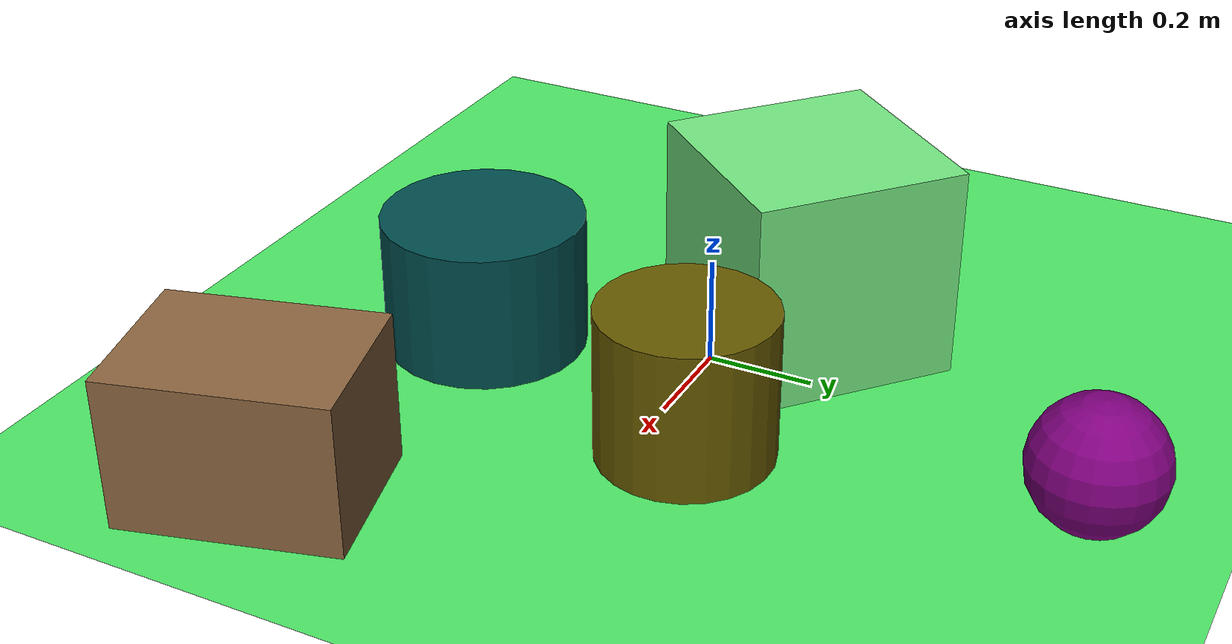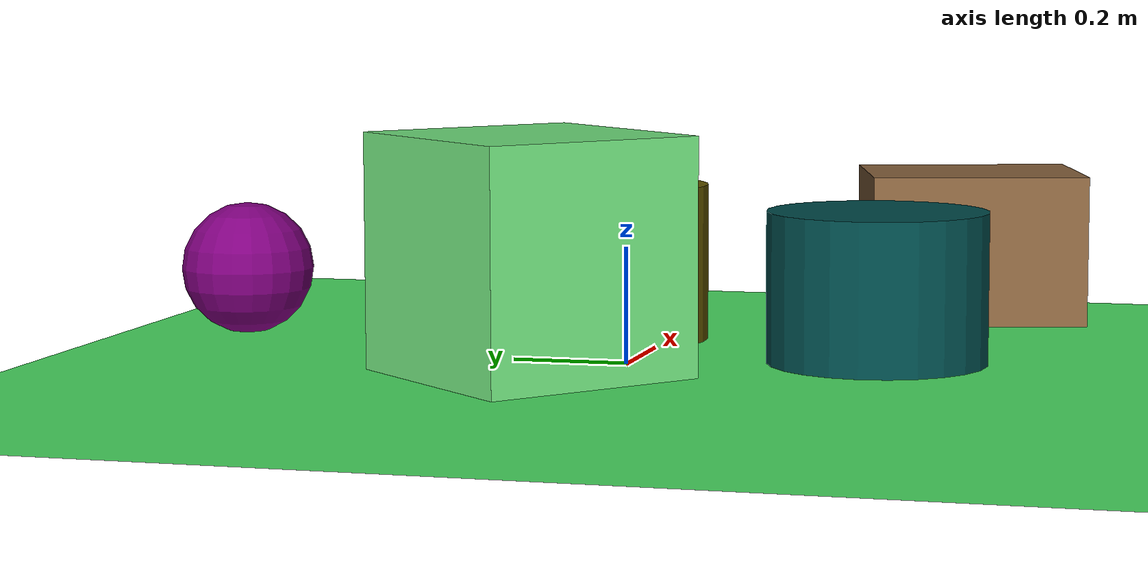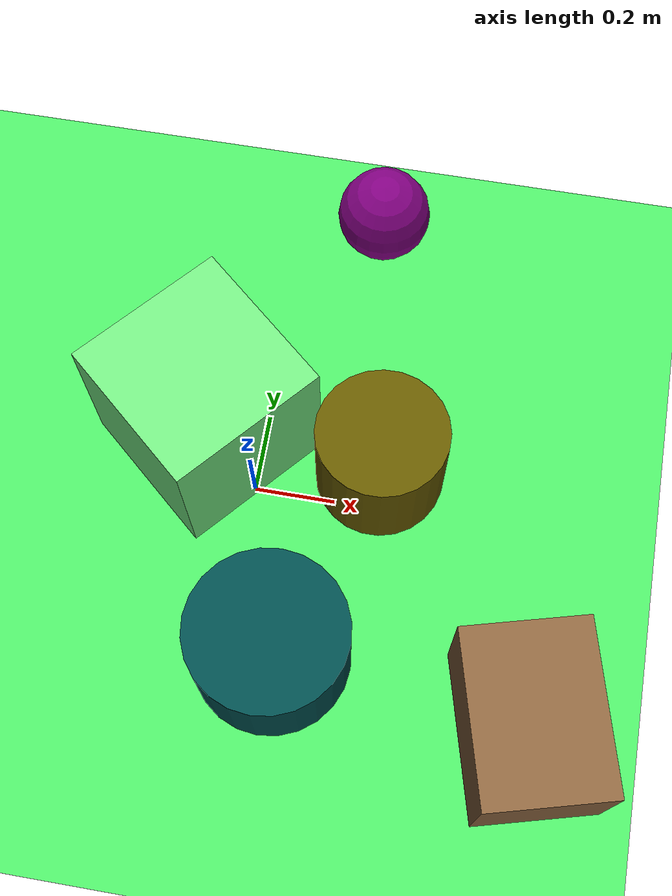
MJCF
<mujoco>
   <asset>
<texture type="skybox" builtin="gradient" rgb1="0.1 0.1 0.5" rgb2="0.9 0.3 0.3" width="500" height="500"/>
<texture name="checker_0" builtin="checker" rgb1="0.9 0.1 0.4" rgb2="0.2 0.7 0.1" width="500" height="500"/>
<texture name="checker_1" builtin="checker" rgb1="0.0 0.4 0.0" rgb2="0.8 0.3 0.0" width="500" height="500"/>
<texture name="checker_2" builtin="checker" rgb1="0.3 0.8 0.0" rgb2="0.6 1.0 1.0" width="500" height="500"/>
<texture name="flat_3" builtin="flat" rgb1="0.5 0.0 0.5" rgb2="0.5 0.0 0.5"  width="500" height="500"/>
<texture name="checker_4" builtin="checker" rgb1="0.0 0.5 0.5" rgb2="0.0 0.1 0.1" width="500" height="500"/><material name="checker_0_mat" reflectance="0.9912372049164416" texrepeat="6 6" texture="checker_0" texuniform="false" />
<material name="checker_1_mat" reflectance="0.9598939198878061" texrepeat="8 8" texture="checker_1" texuniform="false" />
<material name="checker_2_mat" reflectance="0.8935165327081886" texrepeat="2 2" texture="checker_2" texuniform="false" />
<material name="flat_3_mat" reflectance="0.8084632009737573" texture="flat_3" texuniform="true"/>
<material name="checker_4_mat" reflectance="0.3340387075133944" texrepeat="9 9" texture="checker_4" texuniform="false" />
   </asset>

   <worldbody>
     <geom type="plane" size="1 1 0.1" rgba="0.3 0.9 0.4 1" />
<light pos="0.3645940401867558 0.27753020201711354 2" dir="0 0 -1" cutoff="90" diffuse="1 1 1" specular="1 1 1"/>
<geom type="box" pos="0.73 -0.49 0.14" size="0.15 0.2 0.14" material="checker_0_mat" euler="0 0 15" />
<geom type="cylinder" pos="0.3 0.09 0.14" size="0.16 0.14 0.14" material="checker_1_mat" euler="0 0 83" />
<geom type="box" pos="-0.14 0.13 0.2" size="0.2 0.2 0.2" material="checker_2_mat" euler="0 0 49" />
<geom type="sphere" pos="0.2 0.77 0.12" size="0.12 0.12 0.12" material="flat_3_mat" euler="0 0 26" />
<geom type="cylinder" pos="0.12 -0.41 0.13" size="0.19 0.13 0.13" material="checker_4_mat" euler="0 0 45" /><camera euler="60 0 180" fovy="60" name="camera1" pos="-0.2 -1.5 1"></camera>   </worldbody>
   <visual>
      <headlight diffuse="0.7 0.7 0.7"/>
   </visual>
</mujoco>
